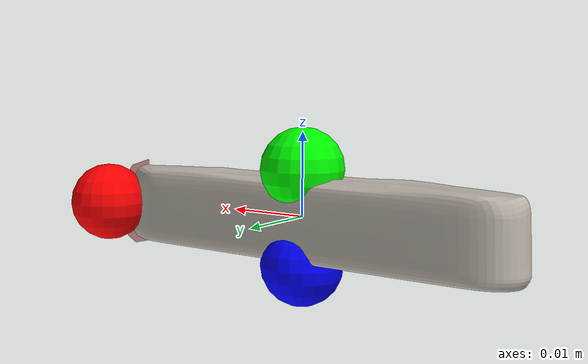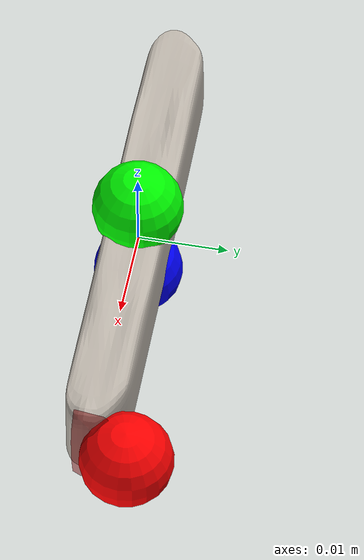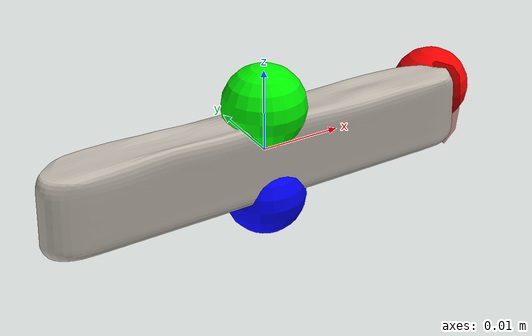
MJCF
<?xml version='1.0' encoding='UTF-8'?>
<mujoco model="model">
  <compiler angle="radian"/>
  <asset>
    <mesh file="visual/CreamCheese010.obj" name="CreamCheese010_vis"/>
    <texture file="visual/T_BC001.png" name="CreamCheese010_material" type="2d"/>
    <material name="CreamCheese010_material" rgba="1 1 1 1.0" texture="CreamCheese010_material" shininess="0.10000002384185791" specular="0.33333333333333337"/>
    <mesh file="collision/CreamCheese010001.obj" name="CreamCheese010001_mesh"/>
  </asset>
  <default>
    <default class="visual">
      <geom conaffinity="0" contype="0" group="1" type="mesh"/>
    </default>
    <default class="collision">
      <geom group="0" rgba="0.5 0 0 0.5"/>
    </default>
    <default class="spawn">
      <geom group="0" rgba="1 1 1 0.5" contype="0" conaffinity="0"/>
      <site group="0" rgba="1 1 1 0.5"/>
    </default>
    <default class="region">
      <geom group="1" conaffinity="0" contype="0" rgba="0 1 0 0"/>
    </default>
  </default>
  <worldbody>
    <body>
      <body name="object">
        <geom mesh="CreamCheese010_vis" type="mesh" solimp="0.998 0.998 0.001" solref="0.001 1" density="100" friction="0.95 0.3 0.1" class="visual" material="CreamCheese010_material"/>
        <geom mesh="CreamCheese010001_mesh" type="mesh" class="collision"/>
      </body>
      <site rgba="1 0 0 1" size="0.005" pos="0.02806098 0.00421501 -7.681000000000011e-05" name="horizontal_radius_site"/>
      <site rgba="0 1 0 1" size="0.005" pos="-4.320000000002224e-06 -3.7349999999995695e-06 0.0056191999999999995" name="top_site"/>
      <site rgba="0 0 1 1" size="0.005" pos="-4.320000000002224e-06 -3.7349999999995695e-06 -0.00577282" name="bottom_site"/>
    </body>
  </worldbody>
  <actuator/>
</mujoco>
